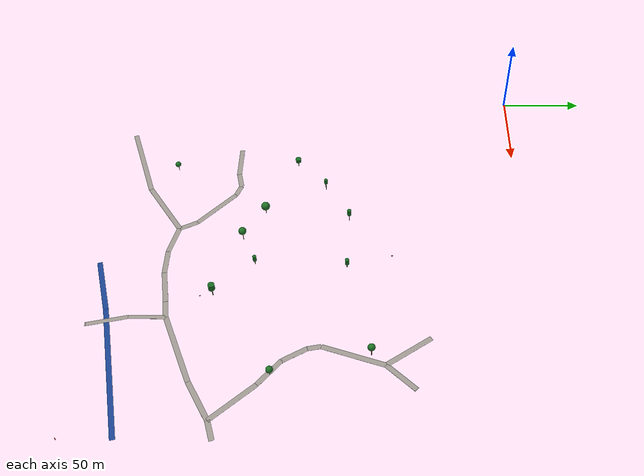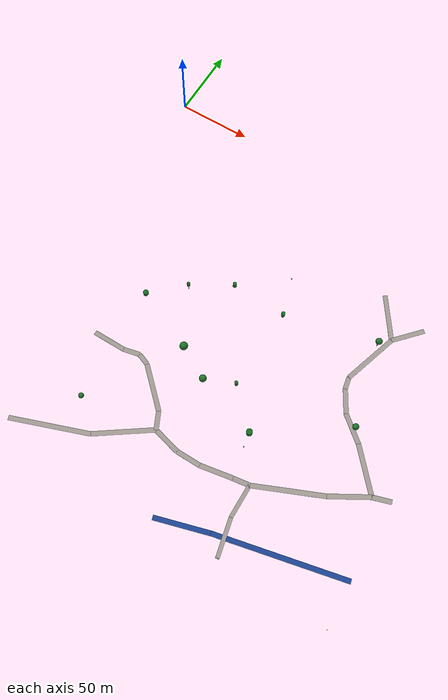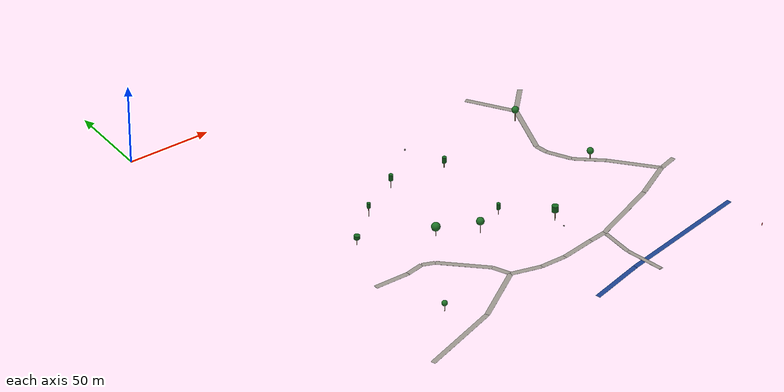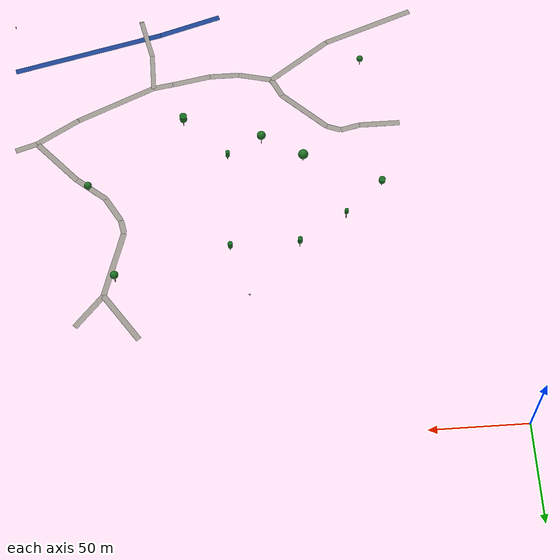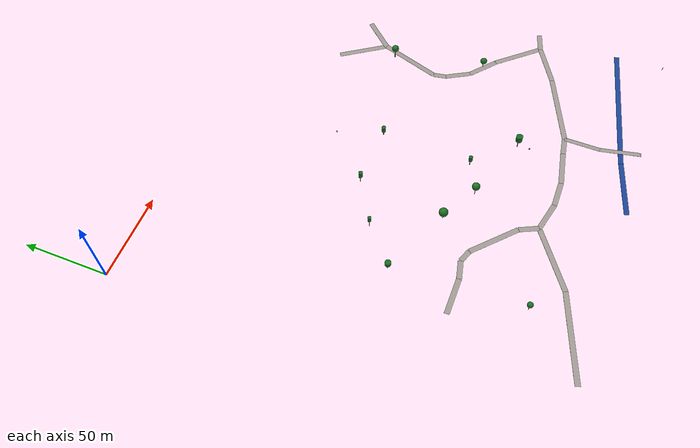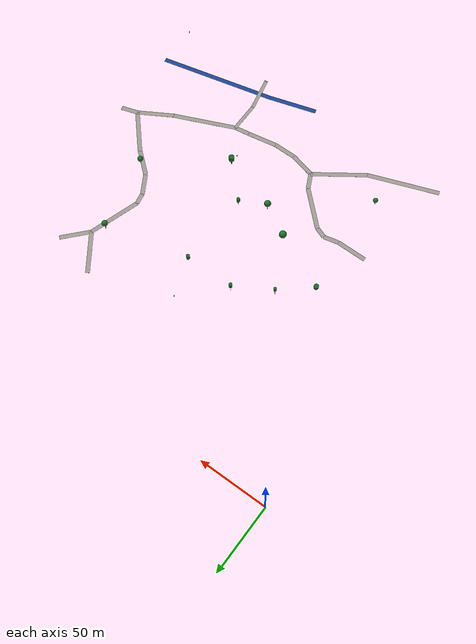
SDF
<sdf version="1.9">
 <world name="yeongwol_sinil">
  <model name="road_0">
   <static>true</static>
   <pose>178.0 -238.0 0.02 0 0 -1.3556</pose>
   <link name="link">
    <collision name="collision">
     <geometry><box><size>23.4 2.5 0.04</size></box></geometry>
     <surface><friction><ode><mu>0.9</mu><mu2>0.9</mu2></ode></friction></surface>
    </collision>
    <visual name="visual">
     <geometry><box><size>23.4 2.5 0.04</size></box></geometry>
     <material><ambient>0.5 0.48 0.45 1</ambient><diffuse>0.6 0.58 0.55 1</diffuse></material>
    </visual>
   </link>
  </model>
  <model name="road_1">
   <static>true</static>
   <pose>175.5 -216.2 0.02 0 0 -1.5708</pose>
   <link name="link">
    <collision name="collision">
     <geometry><box><size>21.0 2.5 0.04</size></box></geometry>
     <surface><friction><ode><mu>0.9</mu><mu2>0.9</mu2></ode></friction></surface>
    </collision>
    <visual name="visual">
     <geometry><box><size>21.0 2.5 0.04</size></box></geometry>
     <material><ambient>0.5 0.48 0.45 1</ambient><diffuse>0.6 0.58 0.55 1</diffuse></material>
    </visual>
   </link>
  </model>
  <model name="road_3">
   <static>true</static>
   <pose>55.6 -238.0 0.02 0 0 0.3528</pose>
   <link name="link">
    <collision name="collision">
     <geometry><box><size>50.9 3.0 0.04</size></box></geometry>
     <surface><friction><ode><mu>0.9</mu><mu2>0.9</mu2></ode></friction></surface>
    </collision>
    <visual name="visual">
     <geometry><box><size>50.9 3.0 0.04</size></box></geometry>
     <material><ambient>0.5 0.48 0.45 1</ambient><diffuse>0.6 0.58 0.55 1</diffuse></material>
    </visual>
   </link>
  </model>
  <model name="road_4">
   <static>true</static>
   <pose>95.4 -218.0 0.02 0 0 0.6118</pose>
   <link name="link">
    <collision name="collision">
     <geometry><box><size>38.9 3.0 0.04</size></box></geometry>
     <surface><friction><ode><mu>0.9</mu><mu2>0.9</mu2></ode></friction></surface>
    </collision>
    <visual name="visual">
     <geometry><box><size>38.9 3.0 0.04</size></box></geometry>
     <material><ambient>0.5 0.48 0.45 1</ambient><diffuse>0.6 0.58 0.55 1</diffuse></material>
    </visual>
   </link>
  </model>
  <model name="road_5">
   <static>true</static>
   <pose>180.5 -249.7 0.02 0 0 -1.4811</pose>
   <link name="link">
    <collision name="collision">
     <geometry><box><size>0.5 2.5 0.04</size></box></geometry>
     <surface><friction><ode><mu>0.9</mu><mu2>0.9</mu2></ode></friction></surface>
    </collision>
    <visual name="visual">
     <geometry><box><size>0.5 2.5 0.04</size></box></geometry>
     <material><ambient>0.5 0.48 0.45 1</ambient><diffuse>0.6 0.58 0.55 1</diffuse></material>
    </visual>
   </link>
  </model>
  <model name="road_6">
   <static>true</static>
   <pose>120.1 -209.0 0.02 0 0 -0.2390</pose>
   <link name="link">
    <collision name="collision">
     <geometry><box><size>18.1 3.0 0.04</size></box></geometry>
     <surface><friction><ode><mu>0.9</mu><mu2>0.9</mu2></ode></friction></surface>
    </collision>
    <visual name="visual">
     <geometry><box><size>18.1 3.0 0.04</size></box></geometry>
     <material><ambient>0.5 0.48 0.45 1</ambient><diffuse>0.6 0.58 0.55 1</diffuse></material>
    </visual>
   </link>
  </model>
  <model name="road_7">
   <static>true</static>
   <pose>136.8 -211.1 0.02 0 0 0.0000</pose>
   <link name="link">
    <collision name="collision">
     <geometry><box><size>15.7 3.0 0.04</size></box></geometry>
     <surface><friction><ode><mu>0.9</mu><mu2>0.9</mu2></ode></friction></surface>
    </collision>
    <visual name="visual">
     <geometry><box><size>15.7 3.0 0.04</size></box></geometry>
     <material><ambient>0.5 0.48 0.45 1</ambient><diffuse>0.6 0.58 0.55 1</diffuse></material>
    </visual>
   </link>
  </model>
  <model name="road_8">
   <static>true</static>
   <pose>154.8 -209.2 0.02 0 0 0.1842</pose>
   <link name="link">
    <collision name="collision">
     <geometry><box><size>20.8 3.0 0.04</size></box></geometry>
     <surface><friction><ode><mu>0.9</mu><mu2>0.9</mu2></ode></friction></surface>
    </collision>
    <visual name="visual">
     <geometry><box><size>20.8 3.0 0.04</size></box></geometry>
     <material><ambient>0.5 0.48 0.45 1</ambient><diffuse>0.6 0.58 0.55 1</diffuse></material>
    </visual>
   </link>
  </model>
  <model name="road_9">
   <static>true</static>
   <pose>170.3 -206.5 0.02 0 0 0.1575</pose>
   <link name="link">
    <collision name="collision">
     <geometry><box><size>10.6 3.0 0.04</size></box></geometry>
     <surface><friction><ode><mu>0.9</mu><mu2>0.9</mu2></ode></friction></surface>
    </collision>
    <visual name="visual">
     <geometry><box><size>10.6 3.0 0.04</size></box></geometry>
     <material><ambient>0.5 0.48 0.45 1</ambient><diffuse>0.6 0.58 0.55 1</diffuse></material>
    </visual>
   </link>
  </model>
  <model name="road_10">
   <static>true</static>
   <pose>108.9 -201.7 0.02 0 0 2.0188</pose>
   <link name="link">
    <collision name="collision">
     <geometry><box><size>11.5 3.0 0.04</size></box></geometry>
     <surface><friction><ode><mu>0.9</mu><mu2>0.9</mu2></ode></friction></surface>
    </collision>
    <visual name="visual">
     <geometry><box><size>11.5 3.0 0.04</size></box></geometry>
     <material><ambient>0.5 0.48 0.45 1</ambient><diffuse>0.6 0.58 0.55 1</diffuse></material>
    </visual>
   </link>
  </model>
  <model name="road_11">
   <static>true</static>
   <pose>95.1 -185.9 0.02 0 0 2.3888</pose>
   <link name="link">
    <collision name="collision">
     <geometry><box><size>30.9 3.0 0.04</size></box></geometry>
     <surface><friction><ode><mu>0.9</mu><mu2>0.9</mu2></ode></friction></surface>
    </collision>
    <visual name="visual">
     <geometry><box><size>30.9 3.0 0.04</size></box></geometry>
     <material><ambient>0.5 0.48 0.45 1</ambient><diffuse>0.6 0.58 0.55 1</diffuse></material>
    </visual>
   </link>
  </model>
  <model name="road_12">
   <static>true</static>
   <pose>80.2 -174.0 0.02 0 0 2.7828</pose>
   <link name="link">
    <collision name="collision">
     <geometry><box><size>7.6 3.0 0.04</size></box></geometry>
     <surface><friction><ode><mu>0.9</mu><mu2>0.9</mu2></ode></friction></surface>
    </collision>
    <visual name="visual">
     <geometry><box><size>7.6 3.0 0.04</size></box></geometry>
     <material><ambient>0.5 0.48 0.45 1</ambient><diffuse>0.6 0.58 0.55 1</diffuse></material>
    </visual>
   </link>
  </model>
  <model name="road_13">
   <static>true</static>
   <pose>71.4 -173.8 0.02 0 0 -2.9176</pose>
   <link name="link">
    <collision name="collision">
     <geometry><box><size>10.7 3.0 0.04</size></box></geometry>
     <surface><friction><ode><mu>0.9</mu><mu2>0.9</mu2></ode></friction></surface>
    </collision>
    <visual name="visual">
     <geometry><box><size>10.7 3.0 0.04</size></box></geometry>
     <material><ambient>0.5 0.48 0.45 1</ambient><diffuse>0.6 0.58 0.55 1</diffuse></material>
    </visual>
   </link>
  </model>
  <model name="road_14">
   <static>true</static>
   <pose>55.5 -175.0 0.02 0 0 3.1416</pose>
   <link name="link">
    <collision name="collision">
     <geometry><box><size>21.4 3.0 0.04</size></box></geometry>
     <surface><friction><ode><mu>0.9</mu><mu2>0.9</mu2></ode></friction></surface>
    </collision>
    <visual name="visual">
     <geometry><box><size>21.4 3.0 0.04</size></box></geometry>
     <material><ambient>0.5 0.48 0.45 1</ambient><diffuse>0.6 0.58 0.55 1</diffuse></material>
    </visual>
   </link>
  </model>
  <model name="road_22">
   <static>true</static>
   <pose>196.9 -70.2 0.02 0 0 2.1674</pose>
   <link name="link">
    <collision name="collision">
     <geometry><box><size>30.5 3.0 0.04</size></box></geometry>
     <surface><friction><ode><mu>0.9</mu><mu2>0.9</mu2></ode></friction></surface>
    </collision>
    <visual name="visual">
     <geometry><box><size>30.5 3.0 0.04</size></box></geometry>
     <material><ambient>0.5 0.48 0.45 1</ambient><diffuse>0.6 0.58 0.55 1</diffuse></material>
    </visual>
   </link>
  </model>
  <model name="road_23">
   <static>true</static>
   <pose>227.6 -181.3 0.02 0 0 -2.6122</pose>
   <link name="link">
    <collision name="collision">
     <geometry><box><size>25.9 3.0 0.04</size></box></geometry>
     <surface><friction><ode><mu>0.9</mu><mu2>0.9</mu2></ode></friction></surface>
    </collision>
    <visual name="visual">
     <geometry><box><size>25.9 3.0 0.04</size></box></geometry>
     <material><ambient>0.5 0.48 0.45 1</ambient><diffuse>0.6 0.58 0.55 1</diffuse></material>
    </visual>
   </link>
  </model>
  <model name="road_24">
   <static>true</static>
   <pose>195.9 -196.8 0.02 0 0 -2.7305</pose>
   <link name="link">
    <collision name="collision">
     <geometry><box><size>44.6 3.0 0.04</size></box></geometry>
     <surface><friction><ode><mu>0.9</mu><mu2>0.9</mu2></ode></friction></surface>
    </collision>
    <visual name="visual">
     <geometry><box><size>44.6 3.0 0.04</size></box></geometry>
     <material><ambient>0.5 0.48 0.45 1</ambient><diffuse>0.6 0.58 0.55 1</diffuse></material>
    </visual>
   </link>
  </model>
  <model name="road_25">
   <static>true</static>
   <pose>244.4 -173.0 0.02 0 0 0.3102</pose>
   <link name="link">
    <collision name="collision">
     <geometry><box><size>11.8 3.0 0.04</size></box></geometry>
     <surface><friction><ode><mu>0.9</mu><mu2>0.9</mu2></ode></friction></surface>
    </collision>
    <visual name="visual">
     <geometry><box><size>11.8 3.0 0.04</size></box></geometry>
     <material><ambient>0.5 0.48 0.45 1</ambient><diffuse>0.6 0.58 0.55 1</diffuse></material>
    </visual>
   </link>
  </model>
  <model name="road_32">
   <static>true</static>
   <pose>212.8 -74.7 0.02 0 0 -2.3100</pose>
   <link name="link">
    <collision name="collision">
     <geometry><box><size>21.9 3.0 0.04</size></box></geometry>
     <surface><friction><ode><mu>0.9</mu><mu2>0.9</mu2></ode></friction></surface>
    </collision>
    <visual name="visual">
     <geometry><box><size>21.9 3.0 0.04</size></box></geometry>
     <material><ambient>0.5 0.48 0.45 1</ambient><diffuse>0.6 0.58 0.55 1</diffuse></material>
    </visual>
   </link>
  </model>
  <model name="road_33">
   <static>true</static>
   <pose>199.8 -100.4 0.02 0 0 -1.8843</pose>
   <link name="link">
    <collision name="collision">
     <geometry><box><size>37.0 3.0 0.04</size></box></geometry>
     <surface><friction><ode><mu>0.9</mu><mu2>0.9</mu2></ode></friction></surface>
    </collision>
    <visual name="visual">
     <geometry><box><size>37.0 3.0 0.04</size></box></geometry>
     <material><ambient>0.5 0.48 0.45 1</ambient><diffuse>0.6 0.58 0.55 1</diffuse></material>
    </visual>
   </link>
  </model>
  <model name="road_34">
   <static>true</static>
   <pose>194.8 -121.8 0.02 0 0 -1.3853</pose>
   <link name="link">
    <collision name="collision">
     <geometry><box><size>7.7 3.0 0.04</size></box></geometry>
     <surface><friction><ode><mu>0.9</mu><mu2>0.9</mu2></ode></friction></surface>
    </collision>
    <visual name="visual">
     <geometry><box><size>7.7 3.0 0.04</size></box></geometry>
     <material><ambient>0.5 0.48 0.45 1</ambient><diffuse>0.6 0.58 0.55 1</diffuse></material>
    </visual>
   </link>
  </model>
  <model name="road_35">
   <static>true</static>
   <pose>199.3 -132.2 0.02 0 0 -1.0520</pose>
   <link name="link">
    <collision name="collision">
     <geometry><box><size>15.3 3.0 0.04</size></box></geometry>
     <surface><friction><ode><mu>0.9</mu><mu2>0.9</mu2></ode></friction></surface>
    </collision>
    <visual name="visual">
     <geometry><box><size>15.3 3.0 0.04</size></box></geometry>
     <material><ambient>0.5 0.48 0.45 1</ambient><diffuse>0.6 0.58 0.55 1</diffuse></material>
    </visual>
   </link>
  </model>
  <model name="road_36">
   <static>true</static>
   <pose>210.4 -145.1 0.02 0 0 -0.6979</pose>
   <link name="link">
    <collision name="collision">
     <geometry><box><size>19.2 3.0 0.04</size></box></geometry>
     <surface><friction><ode><mu>0.9</mu><mu2>0.9</mu2></ode></friction></surface>
    </collision>
    <visual name="visual">
     <geometry><box><size>19.2 3.0 0.04</size></box></geometry>
     <material><ambient>0.5 0.48 0.45 1</ambient><diffuse>0.6 0.58 0.55 1</diffuse></material>
    </visual>
   </link>
  </model>
  <model name="road_37">
   <static>true</static>
   <pose>228.3 -163.0 0.02 0 0 -0.8444</pose>
   <link name="link">
    <collision name="collision">
     <geometry><box><size>31.5 3.0 0.04</size></box></geometry>
     <surface><friction><ode><mu>0.9</mu><mu2>0.9</mu2></ode></friction></surface>
    </collision>
    <visual name="visual">
     <geometry><box><size>31.5 3.0 0.04</size></box></geometry>
     <material><ambient>0.5 0.48 0.45 1</ambient><diffuse>0.6 0.58 0.55 1</diffuse></material>
    </visual>
   </link>
  </model>
  <model name="water_0">
   <static>true</static>
   <pose>153.9 -245.1 -0.15 0 0 0.2915</pose>
   <link name="link">
    <visual name="visual">
     <geometry><box><size>34.3 3.0 0.02</size></box></geometry>
     <material><ambient>0.05 0.15 0.4 0.9</ambient><diffuse>0.1 0.25 0.55 0.9</diffuse></material>
    </visual>
   </link>
  </model>
  <model name="water_1">
   <static>true</static>
   <pose>210.1 -230.8 -0.15 0 0 0.2305</pose>
   <link name="link">
    <visual name="visual">
     <geometry><box><size>81.9 3.0 0.02</size></box></geometry>
     <material><ambient>0.05 0.15 0.4 0.9</ambient><diffuse>0.1 0.25 0.55 0.9</diffuse></material>
    </visual>
   </link>
  </model>
  <model name="tree_0">
   <static>true</static>
   <pose>62.7 -213.7 1.9 0 0 4.65</pose>
   <link name="link">
    <collision name="trunk_col">
     <geometry><cylinder><radius>0.14</radius><length>3.7</length></cylinder></geometry>
    </collision>
    <visual name="trunk">
     <geometry><cylinder><radius>0.14</radius><length>3.7</length></cylinder></geometry>
     <material><ambient>0.35 0.2 0.08 1</ambient><diffuse>0.45 0.28 0.12 1</diffuse></material>
    </visual>
    <visual name="canopy">
     <pose>0 0 3.5 0 0 0</pose>
     <geometry><sphere><radius>1.7</radius></sphere></geometry>
     <material><ambient>0.08 0.35 0.1 1</ambient><diffuse>0.12 0.45 0.15 1</diffuse></material>
    </visual>
   </link>
  </model>
  <model name="tree_19">
   <static>true</static>
   <pose>119.6 -167.2 2.9 0 0 3.81</pose>
   <link name="link">
    <collision name="trunk_col">
     <geometry><cylinder><radius>0.14</radius><length>5.8</length></cylinder></geometry>
    </collision>
    <visual name="trunk">
     <geometry><cylinder><radius>0.14</radius><length>5.8</length></cylinder></geometry>
     <material><ambient>0.35 0.2 0.08 1</ambient><diffuse>0.45 0.28 0.12 1</diffuse></material>
    </visual>
    <visual name="canopy">
     <pose>0 0 5.2 0 0 0</pose>
     <geometry><sphere><radius>2.3</radius></sphere></geometry>
     <material><ambient>0.08 0.35 0.1 1</ambient><diffuse>0.12 0.45 0.15 1</diffuse></material>
    </visual>
   </link>
  </model>
  <model name="tree_27">
   <static>true</static>
   <pose>160.2 -180.9 3.0 0 0 5.33</pose>
   <link name="link">
    <collision name="trunk_col">
     <geometry><cylinder><radius>0.23</radius><length>6.0</length></cylinder></geometry>
    </collision>
    <visual name="trunk">
     <geometry><cylinder><radius>0.23</radius><length>6.0</length></cylinder></geometry>
     <material><ambient>0.35 0.2 0.08 1</ambient><diffuse>0.45 0.28 0.12 1</diffuse></material>
    </visual>
    <visual name="canopy">
     <pose>0 0 5.0 0 0 0</pose>
     <geometry><cylinder><radius>1.9</radius><length>3.9</length></cylinder></geometry>
     <material><ambient>0.05 0.3 0.08 1</ambient><diffuse>0.08 0.4 0.12 1</diffuse></material>
    </visual>
   </link>
  </model>
  <model name="tree_30">
   <static>true</static>
   <pose>98.3 -155.3 1.8 0 0 0.38</pose>
   <link name="link">
    <collision name="trunk_col">
     <geometry><cylinder><radius>0.13</radius><length>3.7</length></cylinder></geometry>
    </collision>
    <visual name="trunk">
     <geometry><cylinder><radius>0.13</radius><length>3.7</length></cylinder></geometry>
     <material><ambient>0.35 0.2 0.08 1</ambient><diffuse>0.45 0.28 0.12 1</diffuse></material>
    </visual>
    <visual name="canopy">
     <pose>0 0 4.4 0 0 0</pose>
     <geometry><sphere><radius>2.6</radius></sphere></geometry>
     <material><ambient>0.08 0.35 0.1 1</ambient><diffuse>0.12 0.45 0.15 1</diffuse></material>
    </visual>
   </link>
  </model>
  <model name="tree_32">
   <static>true</static>
   <pose>78.8 -119.2 2.9 0 0 0.52</pose>
   <link name="link">
    <collision name="trunk_col">
     <geometry><cylinder><radius>0.19</radius><length>5.8</length></cylinder></geometry>
    </collision>
    <visual name="trunk">
     <geometry><cylinder><radius>0.19</radius><length>5.8</length></cylinder></geometry>
     <material><ambient>0.35 0.2 0.08 1</ambient><diffuse>0.45 0.28 0.12 1</diffuse></material>
    </visual>
    <visual name="canopy">
     <pose>0 0 4.5 0 0 0</pose>
     <geometry><cylinder><radius>1.0</radius><length>3.2</length></cylinder></geometry>
     <material><ambient>0.05 0.3 0.08 1</ambient><diffuse>0.08 0.4 0.12 1</diffuse></material>
    </visual>
   </link>
  </model>
  <model name="tree_45">
   <static>true</static>
   <pose>139.8 -104.9 1.7 0 0 5.13</pose>
   <link name="link">
    <collision name="trunk_col">
     <geometry><cylinder><radius>0.23</radius><length>3.3</length></cylinder></geometry>
    </collision>
    <visual name="trunk">
     <geometry><cylinder><radius>0.23</radius><length>3.3</length></cylinder></geometry>
     <material><ambient>0.35 0.2 0.08 1</ambient><diffuse>0.45 0.28 0.12 1</diffuse></material>
    </visual>
    <visual name="canopy">
     <pose>0 0 3.5 0 0 0</pose>
     <geometry><cylinder><radius>1.2</radius><length>3.7</length></cylinder></geometry>
     <material><ambient>0.05 0.3 0.08 1</ambient><diffuse>0.08 0.4 0.12 1</diffuse></material>
    </visual>
   </link>
  </model>
  <model name="tree_48">
   <static>true</static>
   <pose>211.7 -144.6 1.6 0 0 4.94</pose>
   <link name="link">
    <collision name="trunk_col">
     <geometry><cylinder><radius>0.20</radius><length>3.1</length></cylinder></geometry>
    </collision>
    <visual name="trunk">
     <geometry><cylinder><radius>0.20</radius><length>3.1</length></cylinder></geometry>
     <material><ambient>0.35 0.2 0.08 1</ambient><diffuse>0.45 0.28 0.12 1</diffuse></material>
    </visual>
    <visual name="canopy">
     <pose>0 0 3.6 0 0 0</pose>
     <geometry><sphere><radius>2.0</radius></sphere></geometry>
     <material><ambient>0.08 0.35 0.1 1</ambient><diffuse>0.12 0.45 0.15 1</diffuse></material>
    </visual>
   </link>
  </model>
  <model name="tree_56">
   <static>true</static>
   <pose>138.0 -158.7 1.9 0 0 2.60</pose>
   <link name="link">
    <collision name="trunk_col">
     <geometry><cylinder><radius>0.18</radius><length>3.7</length></cylinder></geometry>
    </collision>
    <visual name="trunk">
     <geometry><cylinder><radius>0.18</radius><length>3.7</length></cylinder></geometry>
     <material><ambient>0.35 0.2 0.08 1</ambient><diffuse>0.45 0.28 0.12 1</diffuse></material>
    </visual>
    <visual name="canopy">
     <pose>0 0 3.7 0 0 0</pose>
     <geometry><cylinder><radius>1.1</radius><length>3.7</length></cylinder></geometry>
     <material><ambient>0.05 0.3 0.08 1</ambient><diffuse>0.08 0.4 0.12 1</diffuse></material>
    </visual>
   </link>
  </model>
  <model name="tree_57">
   <static>true</static>
   <pose>58.4 -137.5 2.1 0 0 5.61</pose>
   <link name="link">
    <collision name="trunk_col">
     <geometry><cylinder><radius>0.17</radius><length>4.2</length></cylinder></geometry>
    </collision>
    <visual name="trunk">
     <geometry><cylinder><radius>0.17</radius><length>4.2</length></cylinder></geometry>
     <material><ambient>0.35 0.2 0.08 1</ambient><diffuse>0.45 0.28 0.12 1</diffuse></material>
    </visual>
    <visual name="canopy">
     <pose>0 0 3.2 0 0 0</pose>
     <geometry><cylinder><radius>1.7</radius><length>2.3</length></cylinder></geometry>
     <material><ambient>0.05 0.3 0.08 1</ambient><diffuse>0.08 0.4 0.12 1</diffuse></material>
    </visual>
   </link>
  </model>
  <model name="tree_65">
   <static>true</static>
   <pose>199.2 -90.6 2.8 0 0 4.70</pose>
   <link name="link">
    <collision name="trunk_col">
     <geometry><cylinder><radius>0.24</radius><length>5.6</length></cylinder></geometry>
    </collision>
    <visual name="trunk">
     <geometry><cylinder><radius>0.24</radius><length>5.6</length></cylinder></geometry>
     <material><ambient>0.35 0.2 0.08 1</ambient><diffuse>0.45 0.28 0.12 1</diffuse></material>
    </visual>
    <visual name="canopy">
     <pose>0 0 4.9 0 0 0</pose>
     <geometry><sphere><radius>2.1</radius></sphere></geometry>
     <material><ambient>0.08 0.35 0.1 1</ambient><diffuse>0.12 0.45 0.15 1</diffuse></material>
    </visual>
   </link>
  </model>
  <model name="tree_78">
   <static>true</static>
   <pose>104.0 -104.2 2.7 0 0 2.92</pose>
   <link name="link">
    <collision name="trunk_col">
     <geometry><cylinder><radius>0.13</radius><length>5.5</length></cylinder></geometry>
    </collision>
    <visual name="trunk">
     <geometry><cylinder><radius>0.13</radius><length>5.5</length></cylinder></geometry>
     <material><ambient>0.35 0.2 0.08 1</ambient><diffuse>0.45 0.28 0.12 1</diffuse></material>
    </visual>
    <visual name="canopy">
     <pose>0 0 4.6 0 0 0</pose>
     <geometry><cylinder><radius>1.2</radius><length>3.8</length></cylinder></geometry>
     <material><ambient>0.05 0.3 0.08 1</ambient><diffuse>0.08 0.4 0.12 1</diffuse></material>
    </visual>
   </link>
  </model>
  <model name="rock_5">
   <static>true</static>
   <pose>131.5 -78.5 0.33 0.08 0 2.15</pose>
   <link name="link">
    <collision name="collision"><geometry><box><size>0.66 0.66 0.66</size></box></geometry></collision>
    <visual name="visual">
     <geometry><box><size>0.66 0.66 0.66</size></box></geometry>
     <material><ambient>0.45 0.43 0.4 1</ambient><diffuse>0.55 0.53 0.5 1</diffuse></material>
    </visual>
   </link>
  </model>
  <model name="rock_16">
   <static>true</static>
   <pose>161.0 -188.2 0.26 0.25 0 2.06</pose>
   <link name="link">
    <collision name="collision"><geometry><box><size>0.77 0.40 0.52</size></box></geometry></collision>
    <visual name="visual">
     <geometry><box><size>0.77 0.40 0.52</size></box></geometry>
     <material><ambient>0.45 0.43 0.4 1</ambient><diffuse>0.55 0.53 0.5 1</diffuse></material>
    </visual>
   </link>
  </model>
  <model name="marker_nw">
   <static>true</static>
   <pose>250.0 -250.0 1.0 0 0 0</pose>
   <link name="link">
    <visual name="visual">
     <geometry><cylinder><radius>0.15</radius><length>2.0</length></cylinder></geometry>
     <material><ambient>1 0 0 1</ambient><diffuse>1 0.2 0.2 1</diffuse></material>
    </visual>
   </link>
  </model>
 </world>
</sdf>
